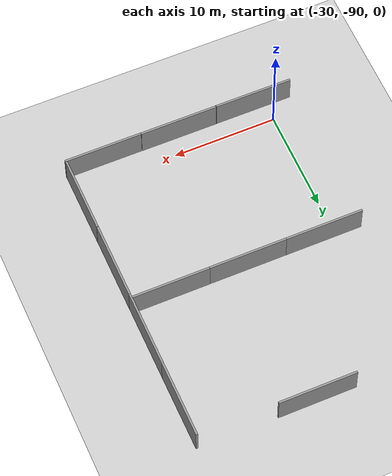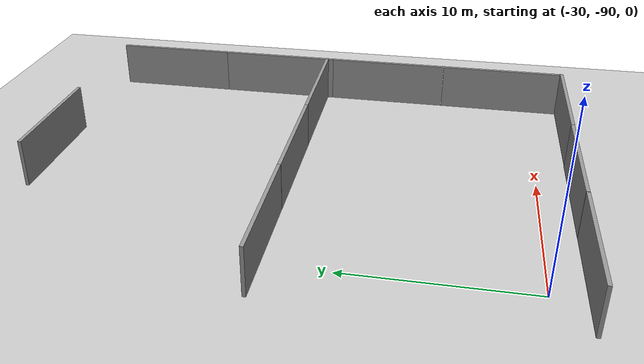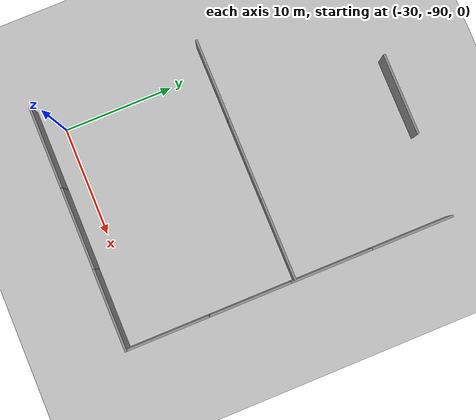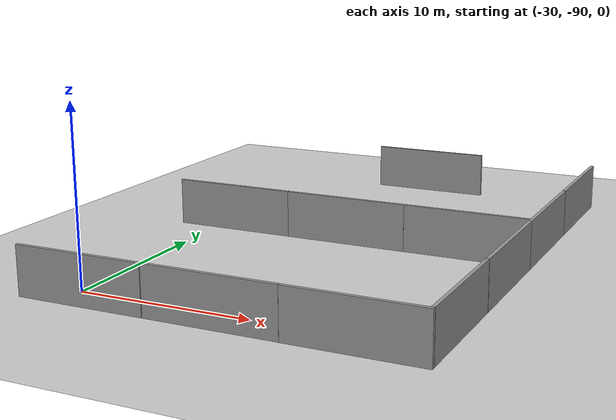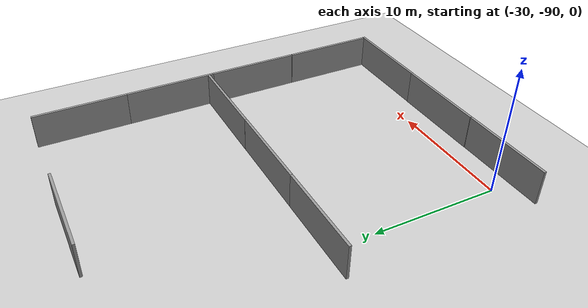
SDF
<sdf version="1.6">
 <world name="default">
  <model name="ground_plane">
   <static>1</static>
   <link name="link">
    <collision name="collision">
     <geometry><plane><normal>0 0 1</normal><size>100 100</size></plane></geometry>
     <surface>
      <contact><collide_bitmask>65535</collide_bitmask></contact>
      <friction><ode><mu>100</mu><mu2>50</mu2></ode></friction>
     </surface>
    </collision>
    <visual name="visual">
     <cast_shadows>0</cast_shadows>
     <geometry><plane><normal>0 0 1</normal><size>100 100</size></plane></geometry>
     <material>
      <script><uri>file://media/materials/scripts/gazebo.material</uri><name>Gazebo/Grey</name></script>
     </material>
    </visual>
   </link>
  </model>
  <model name="grey_wall_clone_1_clone_0_clone">
   <static>1</static>
   <link name="link">
    <pose>0 0 1.4 0 -0 0</pose>
    <collision name="collision"><geometry><box><size>7.5 0.2 2.8</size></box></geometry></collision>
    <visual name="visual">
     <cast_shadows>0</cast_shadows>
     <geometry><box><size>7.5 0.2 2.8</size></box></geometry>
     <material>
      <script>
       <uri>model://grey_wall/materials/scripts</uri>
       <uri>model://grey_wall/materials/textures</uri>
       <name>vrc/grey_wall</name>
      </script>
     </material>
    </visual>
   </link>
   <pose>-10 -65.5097 0 0 0 -1.5708</pose>
  </model>
  <model name="grey_wall_clone_1_clone_0_clone_0">
   <static>1</static>
   <link name="link">
    <pose>0 0 1.4 0 -0 0</pose>
    <collision name="collision"><geometry><box><size>7.5 0.2 2.8</size></box></geometry></collision>
    <visual name="visual">
     <cast_shadows>0</cast_shadows>
     <geometry><box><size>7.5 0.2 2.8</size></box></geometry>
     <material>
      <script>
       <uri>model://grey_wall/materials/scripts</uri>
       <uri>model://grey_wall/materials/textures</uri>
       <name>vrc/grey_wall</name>
      </script>
     </material>
    </visual>
   </link>
   <pose>-10 -73 0 0 0 -1.5708</pose>
  </model>
  <model name="grey_wall_clone_1_clone_0_clone_0_clone">
   <static>1</static>
   <link name="link">
    <pose>0 0 1.4 0 -0 0</pose>
    <collision name="collision"><geometry><box><size>7.5 0.2 2.8</size></box></geometry></collision>
    <visual name="visual">
     <cast_shadows>0</cast_shadows>
     <geometry><box><size>7.5 0.2 2.8</size></box></geometry>
     <material>
      <script>
       <uri>model://grey_wall/materials/scripts</uri>
       <uri>model://grey_wall/materials/textures</uri>
       <name>vrc/grey_wall</name>
      </script>
     </material>
    </visual>
   </link>
   <pose>-10 -80.4597 0 0 0 -1.5708</pose>
  </model>
  <model name="grey_wall_clone_1_clone_0_clone_0_clone_0">
   <static>1</static>
   <link name="link">
    <pose>0 0 1.4 0 -0 0</pose>
    <collision name="collision"><geometry><box><size>7.5 0.2 2.8</size></box></geometry></collision>
    <visual name="visual">
     <cast_shadows>0</cast_shadows>
     <geometry><box><size>7.5 0.2 2.8</size></box></geometry>
     <material>
      <script>
       <uri>model://grey_wall/materials/scripts</uri>
       <uri>model://grey_wall/materials/textures</uri>
       <name>vrc/grey_wall</name>
      </script>
     </material>
    </visual>
   </link>
   <pose>-10 -88 0 0 0 -1.5708</pose>
  </model>
  <model name="grey_wall_0">
   <static>1</static>
   <link name="link">
    <pose>0 0 1.4 0 -0 0</pose>
    <collision name="collision"><geometry><box><size>7.5 0.2 2.8</size></box></geometry></collision>
    <visual name="visual">
     <cast_shadows>0</cast_shadows>
     <geometry><box><size>7.5 0.2 2.8</size></box></geometry>
     <material>
      <script>
       <uri>model://grey_wall/materials/scripts</uri>
       <uri>model://grey_wall/materials/textures</uri>
       <name>vrc/grey_wall</name>
      </script>
     </material>
    </visual>
   </link>
   <pose>-13.6485 -91.8724 0 0 -0 0</pose>
  </model>
  <model name="grey_wall_1">
   <static>1</static>
   <link name="link">
    <pose>0 0 1.4 0 -0 0</pose>
    <collision name="collision"><geometry><box><size>7.5 0.2 2.8</size></box></geometry></collision>
    <visual name="visual">
     <cast_shadows>0</cast_shadows>
     <geometry><box><size>7.5 0.2 2.8</size></box></geometry>
     <material>
      <script>
       <uri>model://grey_wall/materials/scripts</uri>
       <uri>model://grey_wall/materials/textures</uri>
       <name>vrc/grey_wall</name>
      </script>
     </material>
    </visual>
   </link>
   <pose>-21.1622 -91.8562 0 0 -0 0</pose>
  </model>
  <model name="grey_wall_2">
   <static>1</static>
   <link name="link">
    <pose>0 0 1.4 0 -0 0</pose>
    <collision name="collision"><geometry><box><size>7.5 0.2 2.8</size></box></geometry></collision>
    <visual name="visual">
     <cast_shadows>0</cast_shadows>
     <geometry><box><size>7.5 0.2 2.8</size></box></geometry>
     <material>
      <script>
       <uri>model://grey_wall/materials/scripts</uri>
       <uri>model://grey_wall/materials/textures</uri>
       <name>vrc/grey_wall</name>
      </script>
     </material>
    </visual>
   </link>
   <pose>-28.7002 -91.8648 0 0 -0 0</pose>
  </model>
  <model name="grey_wall_4">
   <static>1</static>
   <link name="link">
    <pose>0 0 1.4 0 -0 0</pose>
    <collision name="collision"><geometry><box><size>7.5 0.2 2.8</size></box></geometry></collision>
    <visual name="visual">
     <cast_shadows>0</cast_shadows>
     <geometry><box><size>7.5 0.2 2.8</size></box></geometry>
     <material>
      <script>
       <uri>model://grey_wall/materials/scripts</uri>
       <uri>model://grey_wall/materials/textures</uri>
       <name>vrc/grey_wall</name>
      </script>
     </material>
    </visual>
   </link>
   <pose>-13.8061 -76.3282 0 0 -0 0</pose>
  </model>
  <model name="grey_wall_5">
   <static>1</static>
   <link name="link">
    <pose>0 0 1.4 0 -0 0</pose>
    <collision name="collision"><geometry><box><size>7.5 0.2 2.8</size></box></geometry></collision>
    <visual name="visual">
     <cast_shadows>0</cast_shadows>
     <geometry><box><size>7.5 0.2 2.8</size></box></geometry>
     <material>
      <script>
       <uri>model://grey_wall/materials/scripts</uri>
       <uri>model://grey_wall/materials/textures</uri>
       <name>vrc/grey_wall</name>
      </script>
     </material>
    </visual>
   </link>
   <pose>-21.2633 -76.3346 0 0 -0 0</pose>
  </model>
  <model name="grey_wall_6">
   <static>1</static>
   <link name="link">
    <pose>0 0 1.4 0 -0 0</pose>
    <collision name="collision"><geometry><box><size>7.5 0.2 2.8</size></box></geometry></collision>
    <visual name="visual">
     <cast_shadows>0</cast_shadows>
     <geometry><box><size>7.5 0.2 2.8</size></box></geometry>
     <material>
      <script>
       <uri>model://grey_wall/materials/scripts</uri>
       <uri>model://grey_wall/materials/textures</uri>
       <name>vrc/grey_wall</name>
      </script>
     </material>
    </visual>
   </link>
   <pose>-21.3782 -61.7197 0 0 -0 0</pose>
  </model>
  <model name="grey_wall_7">
   <static>1</static>
   <link name="link">
    <pose>0 0 1.4 0 -0 0</pose>
    <collision name="collision"><geometry><box><size>7.5 0.2 2.8</size></box></geometry></collision>
    <visual name="visual">
     <cast_shadows>0</cast_shadows>
     <geometry><box><size>7.5 0.2 2.8</size></box></geometry>
     <material>
      <script>
       <uri>model://grey_wall/materials/scripts</uri>
       <uri>model://grey_wall/materials/textures</uri>
       <name>vrc/grey_wall</name>
      </script>
     </material>
    </visual>
   </link>
   <pose>-28.766 -76.3295 0 0 -0 0</pose>
  </model>
 </world>
</sdf>
